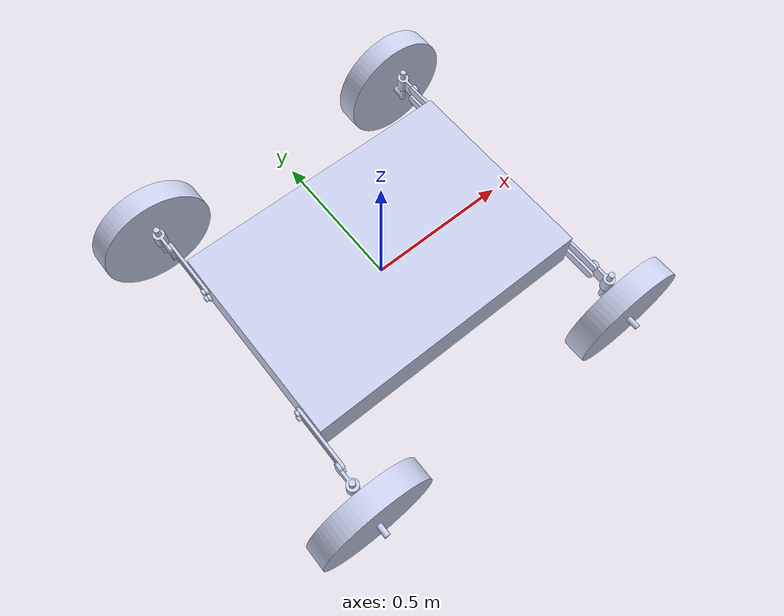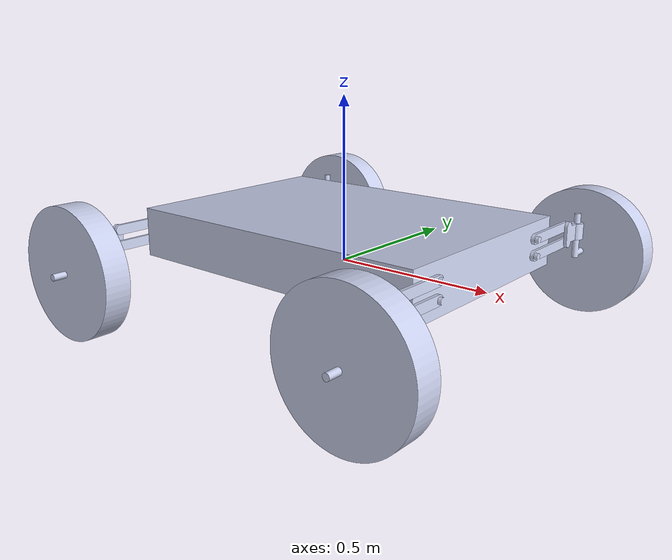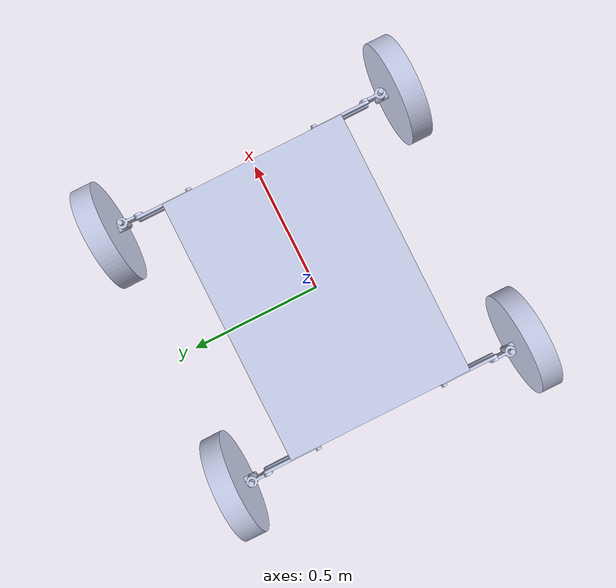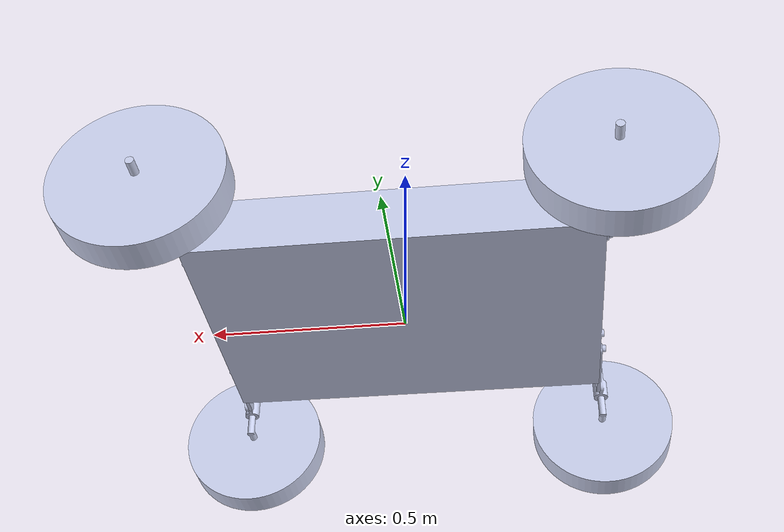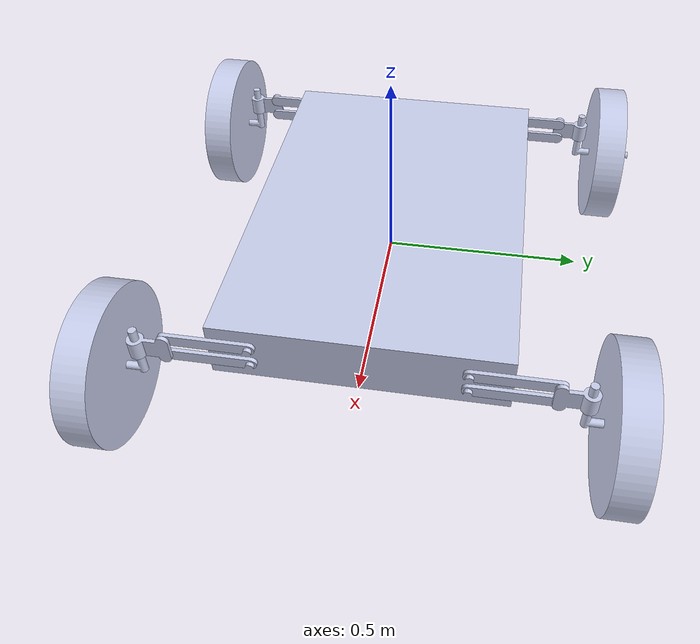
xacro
<robot xmlns:ns0="http://www.ros.org/wiki/xacro" name="VIPER_FULL">

<ns0:include filename="$(find VIPER_FULL_description)/urdf/materials.xacro" />
<ns0:include filename="$(find VIPER_FULL_description)/urdf/VIPER_FULL.trans" />
<ns0:include filename="$(find VIPER_FULL_description)/urdf/VIPER_FULL.gazebo" />
<link name="base_link">
  <inertial>
    <origin xyz="0.0 -4.4327473630754506e-17 0.075" rpy="0 0 0" />
    <mass value="40" />
    <inertia ixx="1.7087250765673858" iyy="3.4116937823395377" izz="4.970465724679575" ixy="0.0" iyz="-0.0" ixz="0.0" />
  </inertial>
  <visual>
    <origin xyz="0 0 0" rpy="0 0 0" />
    <geometry>
      <mesh filename="package://VIPER_FULL_description/meshes/base_link.stl" scale="0.001 0.001 0.001" />
    </geometry>
    <material name="silver">
      <color rgba="0.792156862745098 0.819607843137255 0.933333333333333 1" />
    </material>
  </visual>
  <collision>
    <origin xyz="0 0 0" rpy="0 0 0" />
    <geometry>
      <mesh filename="package://VIPER_FULL_description/meshes/base_link.stl" scale="0.001 0.001 0.001" />
    </geometry>
  </collision>
</link>

<link name="RF_sus_link">
  <inertial>
    <origin xyz="0.0050000000000001155 -0.10491434460128557 -1.1889090892336363e-09" rpy="0 0 0" />
    <mass value="6" />
    <inertia ixx="0.023637633857563584" iyy="0.0005021652109345829" izz="0.023231119162997492" ixy="0.0" iyz="0.0" ixz="0.0" />
  </inertial>
  <visual>
    <origin xyz="-0.5 0.25 -0.05" rpy="0 0 0" />
    <geometry>
      <mesh filename="package://VIPER_FULL_description/meshes/four_bar_1_v1_1.stl" scale="0.001 0.001 0.001" />
    </geometry>
    <material name="silver">
      <color rgba="0.792156862745098 0.819607843137255 0.933333333333333 1" />
    </material>
  </visual>
  <collision>
    <origin xyz="-0.5 0.25 -0.05" rpy="0 0 0" />
    <geometry>
      <mesh filename="package://VIPER_FULL_description/meshes/four_bar_1_v1_1.stl" scale="0.001 0.001 0.001" />
    </geometry>
  </collision>
</link>

<link name="RF_sus_link3">
  <inertial>
    <origin xyz="0.0050000000000001155 -0.041730771756658236 0.024999998873365736" rpy="0 0 0" />
    <mass value="2" />
    <inertia ixx="0.003056831085609723" iyy="0.0009166507818647149" izz="0.002526767807400997" ixy="-0.0" iyz="0.0" ixz="0.0" />
  </inertial>
  <visual>
    <origin xyz="-0.51 0.45 -0.05" rpy="0 0 0" />
    <geometry>
      <mesh filename="package://VIPER_FULL_description/meshes/four_bar_3_v1_1.stl" scale="0.001 0.001 0.001" />
    </geometry>
    <material name="silver">
      <color rgba="0.792156862745098 0.819607843137255 0.933333333333333 1" />
    </material>  </visual>
  <collision>
    <origin xyz="-0.51 0.45 -0.05" rpy="0 0 0" />
    <geometry>
      <mesh filename="package://VIPER_FULL_description/meshes/four_bar_3_v1_1.stl" scale="0.001 0.001 0.001" />
    </geometry>
  </collision>
</link>

<link name="RF_steer_link">
  <inertial>
    <origin xyz="0.0 -0.043780398271573095 -0.07074136486957122" rpy="0 0 0" />
    <mass value="10" />
    <inertia ixx="0.04448390282258499" iyy="0.016956184346695158" izz="0.028028475355693798" ixy="0.0" iyz="-0.000894" ixz="0.0" />
  </inertial>
  <visual>
    <origin xyz="-0.515 0.515 -0.1" rpy="0 0 0" />
    <geometry>
      <mesh filename="package://VIPER_FULL_description/meshes/steer_joint_v12_1.stl" scale="0.001 0.001 0.001" />
    </geometry>
    <material name="silver">
      <color rgba="0.792156862745098 0.819607843137255 0.933333333333333 1" />
    </material>  </visual>
  <collision>
    <origin xyz="-0.515 0.515 -0.1" rpy="0 0 0" />
    <geometry>
      <mesh filename="package://VIPER_FULL_description/meshes/steer_joint_v12_1.stl" scale="0.001 0.001 0.001" />
    </geometry>
  </collision>
</link>

<link name="RF_wheel_link">
  <inertial>
    <origin xyz="2.6645352591003757e-15 3.673628068412427e-11 -2.5633041577126023e-08" rpy="0 0 0" />
    <mass value="5" />
    <inertia ixx="0.05279162213810622" iyy="0.10024977156931693" izz="0.05279162213810622" ixy="-0.0" iyz="-0.0" ixz="-0.0" />
  </inertial>
  <visual>
    <origin xyz="-0.515 0.595 -0.000853" rpy="0 0 0" />
    <geometry>
      <mesh filename="package://VIPER_FULL_description/meshes/wheel_v11__2__1.stl" scale="0.001 0.001 0.001" />
    </geometry>
    <material name="silver">
      <color rgba="0.792156862745098 0.819607843137255 0.933333333333333 1" />
    </material>  </visual>
  <collision>
    <origin xyz="-0.515 0.595 -0.000853" rpy="0 0 0" />
    <geometry>
      <mesh filename="package://VIPER_FULL_description/meshes/wheel_v11__2__1.stl" scale="0.001 0.001 0.001" />
    </geometry>
  </collision>
</link>

<link name="RF_sus_link2">
  <inertial>
    <origin xyz="0.0050000000000001155 -0.10491434460128557 -1.1889090822947423e-09" rpy="0 0 0" />
    <mass value="6" />
    <inertia ixx="0.017925562566186503" iyy="0.00038081620019212597" izz="0.01761728278507859" ixy="0.0" iyz="0.0" ixz="0.0" />
  </inertial>
  <visual>
    <origin xyz="-0.5 0.25 -0.1" rpy="0 0 0" />
    <geometry>
      <mesh filename="package://VIPER_FULL_description/meshes/four_bar_1_v1__1__1.stl" scale="0.001 0.001 0.001" />
    </geometry>
    <material name="silver">
      <color rgba="0.792156862745098 0.819607843137255 0.933333333333333 1" />
    </material>  </visual>
  <collision>
    <origin xyz="-0.5 0.25 -0.1" rpy="0 0 0" />
    <geometry>
      <mesh filename="package://VIPER_FULL_description/meshes/four_bar_1_v1__1__1.stl" scale="0.001 0.001 0.001" />
    </geometry>
  </collision>
</link>

<link name="LF_sus_link">
  <inertial>
    <origin xyz="0.0050000000000001155 0.10491434460128551 1.1889090684169545e-09" rpy="0 0 0" />
    <mass value="6" />
    <inertia ixx="0.023637633857563584" iyy="0.0005021652109345829" izz="0.023231119162997492" ixy="0.0" iyz="0.0" ixz="-0.0" />
  </inertial>
  <visual>
    <origin xyz="-0.5 -0.25 -0.05" rpy="0 0 0" />
    <geometry>
      <mesh filename="package://VIPER_FULL_description/meshes/four_bar_1_v1__5__1.stl" scale="0.001 0.001 0.001" />
    </geometry>
    <material name="silver">
      <color rgba="0.792156862745098 0.819607843137255 0.933333333333333 1" />
    </material>  </visual>
  <collision>
    <origin xyz="-0.5 -0.25 -0.05" rpy="0 0 0" />
    <geometry>
      <mesh filename="package://VIPER_FULL_description/meshes/four_bar_1_v1__5__1.stl" scale="0.001 0.001 0.001" />
    </geometry>
  </collision>
</link>

<link name="LF_sus_link3">
  <inertial>
    <origin xyz="0.0050000000000001155 0.041730771756658236 0.025000001139803288" rpy="0 0 0" />
    <mass value="2" />
    <inertia ixx="0.003056831085609723" iyy="0.0009166507818647149" izz="0.002526767807400997" ixy="0.0" iyz="-0.0" ixz="0.0" />
  </inertial>
  <visual>
    <origin xyz="-0.51 -0.45 -0.05" rpy="0 0 0" />
    <geometry>
      <mesh filename="package://VIPER_FULL_description/meshes/four_bar_3_v1__2__1.stl" scale="0.001 0.001 0.001" />
    </geometry>
    <material name="silver">
      <color rgba="0.792156862745098 0.819607843137255 0.933333333333333 1" />
    </material>
  </visual>
  <collision>
    <origin xyz="-0.51 -0.45 -0.05" rpy="0 0 0" />
    <geometry>
      <mesh filename="package://VIPER_FULL_description/meshes/four_bar_3_v1__2__1.stl" scale="0.001 0.001 0.001" />
    </geometry>
  </collision>
</link>

<link name="LF_steer_link">
  <inertial>
    <origin xyz="3.3306690738754696e-16 0.043780398271572984 -0.07074136260313373" rpy="0 0 0" />
    <mass value="10" />
    <inertia ixx="0.04448390282258499" iyy="0.016956184346695158" izz="0.028028475355693798" ixy="0.0" iyz="0.000894" ixz="0.0" />
  </inertial>
  <visual>
    <origin xyz="-0.515 -0.515 -0.1" rpy="0 0 0" />
    <geometry>
      <mesh filename="package://VIPER_FULL_description/meshes/steer_joint_v12__3__1.stl" scale="0.001 0.001 0.001" />
    </geometry>
    <material name="silver">
      <color rgba="0.792156862745098 0.819607843137255 0.933333333333333 1" />
    </material>  </visual>
  <collision>
    <origin xyz="-0.515 -0.515 -0.1" rpy="0 0 0" />
    <geometry>
      <mesh filename="package://VIPER_FULL_description/meshes/steer_joint_v12__3__1.stl" scale="0.001 0.001 0.001" />
    </geometry>
  </collision>
</link>

<link name="LF_wheel_link">
  <inertial>
    <origin xyz="2.7755575615628914e-15 -3.673650272872919e-11 -2.3366604085992525e-08" rpy="0 0 0" />
    <mass value="5" />
    <inertia ixx="0.05279162213810622" iyy="0.10024977156931693" izz="0.05279162213810622" ixy="0.0" iyz="0.0" ixz="-0.0" />
  </inertial>
  <visual>
    <origin xyz="-0.515 -0.595 -0.000853" rpy="0 0 0" />
    <geometry>
      <mesh filename="package://VIPER_FULL_description/meshes/wheel_v11__3__1.stl" scale="0.001 0.001 0.001" />
    </geometry>
    <material name="silver">
      <color rgba="0.792156862745098 0.819607843137255 0.933333333333333 1" />
    </material>  </visual>
  <collision>
    <origin xyz="-0.515 -0.595 -0.000853" rpy="0 0 0" />
    <geometry>
      <mesh filename="package://VIPER_FULL_description/meshes/wheel_v11__3__1.stl" scale="0.001 0.001 0.001" />
    </geometry>
  </collision>
</link>

<link name="LF_sus_link2">
  <inertial>
    <origin xyz="0.0050000000000000044 0.10491434460128551 -1.1889090822947423e-09" rpy="0 0 0" />
    <mass value="6" />
    <inertia ixx="0.017925562566186503" iyy="0.00038081620019212597" izz="0.01761728278507859" ixy="-0.0" iyz="-0.0" ixz="0.0" />
  </inertial>
  <visual>
    <origin xyz="-0.5 -0.25 -0.1" rpy="0 0 0" />
    <geometry>
      <mesh filename="package://VIPER_FULL_description/meshes/four_bar_1_v1__2__1.stl" scale="0.001 0.001 0.001" />
    </geometry>
    <material name="silver">
      <color rgba="0.792156862745098 0.819607843137255 0.933333333333333 1" />
    </material>  </visual>
  <collision>
    <origin xyz="-0.5 -0.25 -0.1" rpy="0 0 0" />
    <geometry>
      <mesh filename="package://VIPER_FULL_description/meshes/four_bar_1_v1__2__1.stl" scale="0.001 0.001 0.001" />
    </geometry>
  </collision>
</link>

<link name="LH_sus_link">
  <inertial>
    <origin xyz="-0.004999999999999893 0.10491434460128546 -1.1889090892336363e-09" rpy="0 0 0" />
    <mass value="6" />
    <inertia ixx="0.023637633857563584" iyy="0.0005021652109345829" izz="0.023231119162997492" ixy="0.0" iyz="-0.0" ixz="0.0" />
  </inertial>
  <visual>
    <origin xyz="0.5 -0.25 -0.05" rpy="0 0 0" />
    <geometry>
      <mesh filename="package://VIPER_FULL_description/meshes/four_bar_1_v1__4__1.stl" scale="0.001 0.001 0.001" />
    </geometry>
    <material name="silver">
      <color rgba="0.792156862745098 0.819607843137255 0.933333333333333 1" />
    </material>  </visual>
  <collision>
    <origin xyz="0.5 -0.25 -0.05" rpy="0 0 0" />
    <geometry>
      <mesh filename="package://VIPER_FULL_description/meshes/four_bar_1_v1__4__1.stl" scale="0.001 0.001 0.001" />
    </geometry>
  </collision>
</link>

<link name="LH_sus_link3">
  <inertial>
    <origin xyz="-0.004999999999999893 0.041730771756658014 0.024999998873365722" rpy="0 0 0" />
    <mass value="2" />
    <inertia ixx="0.003056831085609723" iyy="0.0009166507818647149" izz="0.002526767807400997" ixy="0.0" iyz="-0.0" ixz="0.0" />
  </inertial>
  <visual>
    <origin xyz="0.51 -0.45 -0.05" rpy="0 0 0" />
    <geometry>
      <mesh filename="package://VIPER_FULL_description/meshes/four_bar_3_v1__3__1.stl" scale="0.001 0.001 0.001" />
    </geometry>
    <material name="silver">
      <color rgba="0.792156862745098 0.819607843137255 0.933333333333333 1" />
    </material>  </visual>
  <collision>
    <origin xyz="0.51 -0.45 -0.05" rpy="0 0 0" />
    <geometry>
      <mesh filename="package://VIPER_FULL_description/meshes/four_bar_3_v1__3__1.stl" scale="0.001 0.001 0.001" />
    </geometry>
  </collision>
</link>

<link name="LH_steer_link">
  <inertial>
    <origin xyz="1.1102230246251565e-16 0.04378039827157276 -0.07074136486957125" rpy="0 0 0" />
    <mass value="10" />
    <inertia ixx="0.04448390282258499" iyy="0.016956184346695158" izz="0.028028475355693798" ixy="-0.0" iyz="0.000894" ixz="0.0" />
  </inertial>
  <visual>
    <origin xyz="0.515 -0.515 -0.1" rpy="0 0 0" />
    <geometry>
      <mesh filename="package://VIPER_FULL_description/meshes/steer_joint_v12__2__1.stl" scale="0.001 0.001 0.001" />
    </geometry>
    <material name="silver">
      <color rgba="0.792156862745098 0.819607843137255 0.933333333333333 1" />
    </material>  </visual>
  <collision>
    <origin xyz="0.515 -0.515 -0.1" rpy="0 0 0" />
    <geometry>
      <mesh filename="package://VIPER_FULL_description/meshes/steer_joint_v12__2__1.stl" scale="0.001 0.001 0.001" />
    </geometry>
  </collision>
</link>

<link name="LH_wheel_link">
  <inertial>
    <origin xyz="2.55351295663786e-15 -3.673672477333412e-11 -2.5633041612471014e-08" rpy="0 0 0" />
    <mass value="5" />
    <inertia ixx="0.05279162213810622" iyy="0.10024977156931693" izz="0.05279162213810622" ixy="0.0" iyz="0.0" ixz="-0.0" />
  </inertial>
  <visual>
    <origin xyz="0.515 -0.595 -0.000853" rpy="0 0 0" />
    <geometry>
      <mesh filename="package://VIPER_FULL_description/meshes/wheel_v11__1__1.stl" scale="0.001 0.001 0.001" />
    </geometry>
    <material name="silver">
      <color rgba="0.792156862745098 0.819607843137255 0.933333333333333 1" />
    </material>  </visual>
  <collision>
    <origin xyz="0.515 -0.595 -0.000853" rpy="0 0 0" />
    <geometry>
      <mesh filename="package://VIPER_FULL_description/meshes/wheel_v11__1__1.stl" scale="0.001 0.001 0.001" />
    </geometry>
  </collision>
</link>

<link name="LH_sus_link2">
  <inertial>
    <origin xyz="-0.0050000000000000044 0.10491434460128546 -1.1889090822947423e-09" rpy="0 0 0" />
    <mass value="6" />
    <inertia ixx="0.017925562566186503" iyy="0.00038081620019212597" izz="0.01761728278507859" ixy="0.0" iyz="-0.0" ixz="-0.0" />
  </inertial>
  <visual>
    <origin xyz="0.5 -0.25 -0.1" rpy="0 0 0" />
    <geometry>
      <mesh filename="package://VIPER_FULL_description/meshes/four_bar_1_v1__3__1.stl" scale="0.001 0.001 0.001" />
    </geometry>
    <material name="silver">
      <color rgba="0.792156862745098 0.819607843137255 0.933333333333333 1" />
    </material>  </visual>
  <collision>
    <origin xyz="0.5 -0.25 -0.1" rpy="0 0 0" />
    <geometry>
      <mesh filename="package://VIPER_FULL_description/meshes/four_bar_1_v1__3__1.stl" scale="0.001 0.001 0.001" />
    </geometry>
  </collision>
</link>

<link name="RH_sus_link">
  <inertial>
    <origin xyz="-0.004999999999999893 -0.10491434460128557 1.1889090961725302e-09" rpy="0 0 0" />
    <mass value="6" />
    <inertia ixx="0.023637633857563584" iyy="0.0005021652109345829" izz="0.023231119162997492" ixy="-0.0" iyz="-0.0" ixz="0.0" />
  </inertial>
  <visual>
    <origin xyz="0.5 0.25 -0.05" rpy="0 0 0" />
    <geometry>
      <mesh filename="package://VIPER_FULL_description/meshes/four_bar_1_v1__6__1.stl" scale="0.001 0.001 0.001" />
    </geometry>
    <material name="silver">
      <color rgba="0.792156862745098 0.819607843137255 0.933333333333333 1" />
    </material>  </visual>
  <collision>
    <origin xyz="0.5 0.25 -0.05" rpy="0 0 0" />
    <geometry>
      <mesh filename="package://VIPER_FULL_description/meshes/four_bar_1_v1__6__1.stl" scale="0.001 0.001 0.001" />
    </geometry>
  </collision>
</link>

<link name="RH_sus_link3">
  <inertial>
    <origin xyz="-0.004999999999999893 -0.041730771756658236 0.025000001139803357" rpy="0 0 0" />
    <mass value="2" />
    <inertia ixx="0.003056831085609723" iyy="0.0009166507818647149" izz="0.002526767807400997" ixy="0.0" iyz="0.0" ixz="0.0" />
  </inertial>
  <visual>
    <origin xyz="0.51 0.45 -0.05" rpy="0 0 0" />
    <geometry>
      <mesh filename="package://VIPER_FULL_description/meshes/four_bar_3_v1__1__1.stl" scale="0.001 0.001 0.001" />
    </geometry>
    <material name="silver">
      <color rgba="0.792156862745098 0.819607843137255 0.933333333333333 1" />
    </material>  </visual>
  <collision>
    <origin xyz="0.51 0.45 -0.05" rpy="0 0 0" />
    <geometry>
      <mesh filename="package://VIPER_FULL_description/meshes/four_bar_3_v1__1__1.stl" scale="0.001 0.001 0.001" />
    </geometry>
  </collision>
</link>

<link name="RH_steer_link">
  <inertial>
    <origin xyz="1.1102230246251565e-16 -0.043780398271572984 -0.07074136260313361" rpy="0 0 0" />
    <mass value="10" />
    <inertia ixx="0.04448390282258499" iyy="0.016956184346695158" izz="0.028028475355693798" ixy="0.0" iyz="-0.000894" ixz="0.0" />
  </inertial>
  <visual>
    <origin xyz="0.515 0.515 -0.1" rpy="0 0 0" />
    <geometry>
      <mesh filename="package://VIPER_FULL_description/meshes/steer_joint_v12__1__1.stl" scale="0.001 0.001 0.001" />
    </geometry>
    <material name="silver">
      <color rgba="0.792156862745098 0.819607843137255 0.933333333333333 1" />
    </material>  </visual>
  <collision>
    <origin xyz="0.515 0.515 -0.1" rpy="0 0 0" />
    <geometry>
      <mesh filename="package://VIPER_FULL_description/meshes/steer_joint_v12__1__1.stl" scale="0.001 0.001 0.001" />
    </geometry>
  </collision>
</link>

<link name="RH_wheel_link">
  <inertial>
    <origin xyz="2.6645352591003757e-15 3.673650272872919e-11 -2.336660396380294e-08" rpy="0 0 0" />
    <mass value="5" />
    <inertia ixx="0.05279162213810622" iyy="0.10024977156931693" izz="0.05279162213810622" ixy="-0.0" iyz="-0.0" ixz="-0.0" />
  </inertial>
  <visual>
    <origin xyz="0.515 0.595 -0.000853" rpy="0 0 0" />
    <geometry>
      <mesh filename="package://VIPER_FULL_description/meshes/wheel_v11_1.stl" scale="0.001 0.001 0.001" />
    </geometry>
    <material name="silver">
      <color rgba="0.792156862745098 0.819607843137255 0.933333333333333 1" />
    </material>  </visual>
  <collision>
    <origin xyz="0.515 0.595 -0.000853" rpy="0 0 0" />
    <geometry>
      <mesh filename="package://VIPER_FULL_description/meshes/wheel_v11_1.stl" scale="0.001 0.001 0.001" />
    </geometry>
  </collision>
</link>

<link name="RH_sus_link2">
  <inertial>
    <origin xyz="-0.004999999999999893 -0.10491434460128557 1.1889090961725302e-09" rpy="0 0 0" />
    <mass value="6" />
    <inertia ixx="0.017925562566186503" iyy="0.00038081620019212597" izz="0.01761728278507859" ixy="-0.0" iyz="-0.0" ixz="-0.0" />
  </inertial>
  <visual>
    <origin xyz="0.5 0.25 -0.1" rpy="0 0 0" />
    <geometry>
      <mesh filename="package://VIPER_FULL_description/meshes/four_bar_1_v1__7__1.stl" scale="0.001 0.001 0.001" />
    </geometry>
    <material name="silver">
      <color rgba="0.792156862745098 0.819607843137255 0.933333333333333 1" />
    </material>  </visual>
  <collision>
    <origin xyz="0.5 0.25 -0.1" rpy="0 0 0" />
    <geometry>
      <mesh filename="package://VIPER_FULL_description/meshes/four_bar_1_v1__7__1.stl" scale="0.001 0.001 0.001" />
    </geometry>
  </collision>
</link>

<link name="dummy_link1">
</link>

<link name="dummy_link2">
</link>

<link name="dummy_link3">
</link>

<link name="dummy_link4">
</link>

<joint name="RF_sus_joint" type="revolute">
  <origin xyz="0.5 -0.25 0.05" rpy="0 0 0" />
  <parent link="base_link" />
  <child link="RF_sus_link" />
  <axis xyz="1.0 0.0 0.0" />
  <limit upper="0.5235987755982988" lower="-0.5235987755982988" />
  <limit effort="1" velocity="1" />
   <dynamics damping="0.1" friction="0.5" />
</joint>

<joint name="RF_sus_joint_fixed" type="continuous">
  <origin xyz="0.01 -0.2 0.0" rpy="0 0 0" />
  <parent link="RF_sus_link" />
  <child link="RF_sus_link3" />
  <axis xyz="1.0 0.0 0.0" />
</joint>

<joint name="RF_steer_joint" type="revolute">
  <origin xyz="0.005 -0.065 0.05" rpy="0 0 0" />
  <parent link="RF_sus_link3" />
  <child link="RF_steer_link" />
  <axis xyz="-0.0 -0.0 -1.0" />
    <limit lower="-0.2" upper="0.2" effort="10" velocity="10" />
    <dynamics damping="1" friction="5" />
</joint>

<joint name="RF_wheel_joint" type="revolute">
  <origin xyz="0.0 -0.08 -0.099147" rpy="0 0 0" />
  <parent link="RF_steer_link" />
  <child link="RF_wheel_link" />
  <axis xyz="0.0 -1.0 0.0" />
  <limit effort="100" velocity="100" />
   <dynamics damping="0.5" friction="1" />
</joint>

<joint name="RF_sus_joint_2" type="revolute">
  <origin xyz="0.5 -0.25 0.1" rpy="0 0 0" />
  <parent link="base_link" />
  <child link="RF_sus_link2" />
  <axis xyz="-1.0 0.0 0.0" />
  <limit upper="0.5235987755982988" lower="-0.5235987755982988" />
  <limit effort="1" velocity="1" />
   <dynamics damping="0.1" friction="0.5" />
</joint>

<joint name="LF_sus_joint" type="revolute">
  <origin xyz="0.5 0.25 0.05" rpy="0 0 0" />
  <parent link="base_link" />
  <child link="LF_sus_link" />
  <axis xyz="1.0 -0.0 0.0" />
  <limit upper="0.5235987755982988" lower="-0.5235987755982988" />
  <limit effort="5" velocity="1" />
   <dynamics damping="0.5" friction="1" />
</joint>

<joint name="LF_sus_joint_fixed" type="continuous">
  <origin xyz="0.01 0.2 0.0" rpy="0 0 0" />
  <parent link="LF_sus_link" />
  <child link="LF_sus_link3" />
  <axis xyz="1.0 -0.0 0.0" />
</joint>

<joint name="LF_steer_joint" type="revolute">
  <origin xyz="0.005 0.065 0.05" rpy="0 0 0" />
  <parent link="LF_sus_link3" />
  <child link="LF_steer_link" />
  <axis xyz="0.0 0.0 -1.0" />
    <limit lower="-0.2" upper="0.2" effort="10" velocity="10" />
    <dynamics damping="1" friction="5" />
</joint>

<joint name="LF_wheel_joint" type="revolute">
  <origin xyz="0.0 0.08 -0.099147" rpy="0 0 0" />
  <parent link="LF_steer_link" />
  <child link="LF_wheel_link" />
  <axis xyz="0.0 1.0 0.0" />
  <limit effort="100" velocity="100" />
   <dynamics damping="0.5" friction="1" />
</joint>

<joint name="LF_sus_joint_2" type="revolute">
  <origin xyz="0.5 0.25 0.1" rpy="0 0 0" />
  <parent link="base_link" />
  <child link="LF_sus_link2" />
  <axis xyz="1.0 -0.0 0.0" />
  <limit upper="0.5235987755982988" lower="-0.5235987755982988" />
  <limit effort="1" velocity="1" />
   <dynamics damping="0.1" friction="0.5" />
</joint>

<joint name="LH_sus_joint" type="revolute">
  <origin xyz="-0.5 0.25 0.05" rpy="0 0 0" />
  <parent link="base_link" />
  <child link="LH_sus_link" />
  <axis xyz="1.0 0.0 0.0" />
  <limit upper="0.5235987755982988" lower="-0.5235987755982988" />
  <limit effort="5" velocity="1" />
   <dynamics damping="0.5" friction="1" />
</joint>

<joint name="LH_sus_joint_fixed" type="continuous">
  <origin xyz="-0.01 0.2 0.0" rpy="0 0 0" />
  <parent link="LH_sus_link" />
  <child link="LH_sus_link3" />
  <axis xyz="-1.0 0.0 0.0" />
</joint>

<joint name="LH_steer_joint" type="revolute">
  <origin xyz="-0.005 0.065 0.05" rpy="0 0 0" />
  <parent link="LH_sus_link3" />
  <child link="LH_steer_link" />
  <axis xyz="0.0 0.0 -1.0" />
    <limit lower="-0.2" upper="0.2" effort="10" velocity="10" />
    <dynamics damping="1" friction="5" />
</joint>

<joint name="LH_wheel_joint" type="revolute">
  <origin xyz="0.0 0.08 -0.099147" rpy="0 0 0" />
  <parent link="LH_steer_link" />
  <child link="LH_wheel_link" />
  <axis xyz="-0.0 1.0 0.0" />
  <limit effort="100" velocity="100" />
   <dynamics damping="0.5" friction="1" />
</joint>

<joint name="LH_sus_joint_2" type="continuous">
  <origin xyz="-0.5 0.25 0.1" rpy="0 0 0" />
  <parent link="base_link" />
  <child link="LH_sus_link2" />
  <axis xyz="1.0 0.0 0.0" />
  <limit upper="0.5235987755982988" lower="-0.5235987755982988" />
  <limit effort="1" velocity="1" />
   <dynamics damping="0.1" friction="0.5" />
</joint>

<joint name="RH_sus_joint" type="revolute">
  <origin xyz="-0.5 -0.25 0.05" rpy="0 0 0" />
  <parent link="base_link" />
  <child link="RH_sus_link" />
  <axis xyz="1.0 0.0 0.0" />
  <limit upper="0.5235987755982988" lower="-0.5235987755982988" />
  <limit effort="5" velocity="1" />
   <dynamics damping="0.5" friction="1" />
</joint>

<joint name="RH_sus_joint_fixed" type="continuous">
  <origin xyz="-0.01 -0.2 0.0" rpy="0 0 0" />
  <parent link="RH_sus_link" />
  <child link="RH_sus_link3" />
  <axis xyz="-1.0 0.0 0.0" />
</joint>

<joint name="RH_steer_joint" type="revolute">
  <origin xyz="-0.005 -0.065 0.05" rpy="0 0 0" />
  <parent link="RH_sus_link3" />
  <child link="RH_steer_link" />
  <axis xyz="-0.0 -0.0 -1.0" />
  <limit upper="0.5236" lower="-0.5236" />
    <limit lower="-0.2" upper="0.2" effort="10" velocity="10" />
    <dynamics damping="1" friction="5" />
</joint>

<joint name="RH_wheel_joint" type="revolute">
  <origin xyz="0.0 -0.08 -0.099147" rpy="0 0 0" />
  <parent link="RH_steer_link" />
  <child link="RH_wheel_link" />
  <axis xyz="0.0 -1.0 0.0" />
  <limit effort="100" velocity="100" />
   <dynamics damping="0.5" friction="1" />
</joint>

<joint name="RH_sus_joint_2" type="continuous">
  <origin xyz="-0.5 -0.25 0.1" rpy="0 0 0" />
  <parent link="base_link" />
  <child link="RH_sus_link2" />
  <axis xyz="1.0 0.0 0.0" />
  <limit upper="0.5235987755982988" lower="-0.5235987755982988" />
  <limit effort="1" velocity="1" />
   <dynamics damping="0.1" friction="0.5" />
</joint>

<joint name="dummy_joint1" type="fixed">
  <origin xyz="0 -0.2 0" rpy="0 0 0" />
  <parent link="RF_sus_link2" />
  <child link="dummy_link1" />
</joint>

<joint name="dummy_joint2" type="fixed">
  <origin xyz="0 0.2 0" rpy="0 0 0" />
  <parent link="LF_sus_link2" />
  <child link="dummy_link2" />
</joint>

<joint name="dummy_joint3" type="fixed">
  <origin xyz="0 0.2 0" rpy="0 0 0" />
  <parent link="LH_sus_link2" />
  <child link="dummy_link3" />
</joint>

<joint name="dummy_joint4" type="fixed">
  <origin xyz="0 -0.2 0" rpy="0 0 0" />
  <parent link="RH_sus_link2" />
  <child link="dummy_link4" />
</joint>

</robot>

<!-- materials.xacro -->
<robot name="VIPER_FULL" xmlns:xacro="http://www.ros.org/wiki/xacro" >

<material name="silver">
  <color rgba="0.700 0.700 0.700 1.000"/>
</material>

</robot>

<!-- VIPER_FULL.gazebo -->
<robot name="VIPER_FULL" xmlns:xacro="http://www.ros.org/wiki/xacro" >

<xacro:property name="body_color" value="Gazebo/Silver" />

<gazebo>
  <plugin name="control" filename="libgazebo_ros_control.so"/>
</gazebo>
<gazebo reference="base_link">
  <material>${body_color}</material>
  <mu1>0.2</mu1>
  <mu2>0.2</mu2>
  <selfCollide>true</selfCollide>
  <gravity>true</gravity>
</gazebo>

<gazebo reference="four_bar_1_v1_1">
  <material>${body_color}</material>
  <mu1>0.2</mu1>
  <mu2>0.2</mu2>
  <selfCollide>true</selfCollide>
</gazebo>

<gazebo reference="four_bar_3_v1_1">
  <material>${body_color}</material>
  <mu1>0.2</mu1>
  <mu2>0.2</mu2>
  <selfCollide>true</selfCollide>
</gazebo>

<gazebo reference="steer_joint_v12_1">
  <material>${body_color}</material>
  <mu1>0.2</mu1>
  <mu2>0.2</mu2>
  <selfCollide>true</selfCollide>
</gazebo>

<gazebo reference="wheel_v11__2__1">
  <material>${body_color}</material>
  <mu1>0.2</mu1>
  <mu2>0.2</mu2>
  <selfCollide>true</selfCollide>
</gazebo>

<gazebo reference="four_bar_1_v1__1__1">
  <material>${body_color}</material>
  <mu1>0.2</mu1>
  <mu2>0.2</mu2>
  <selfCollide>true</selfCollide>
</gazebo>

<gazebo reference="four_bar_1_v1__5__1">
  <material>${body_color}</material>
  <mu1>0.2</mu1>
  <mu2>0.2</mu2>
  <selfCollide>true</selfCollide>
</gazebo>

<gazebo reference="four_bar_3_v1__2__1">
  <material>${body_color}</material>
  <mu1>0.2</mu1>
  <mu2>0.2</mu2>
  <selfCollide>true</selfCollide>
</gazebo>

<gazebo reference="steer_joint_v12__3__1">
  <material>${body_color}</material>
  <mu1>0.2</mu1>
  <mu2>0.2</mu2>
  <selfCollide>true</selfCollide>
</gazebo>

<gazebo reference="wheel_v11__3__1">
  <material>${body_color}</material>
  <mu1>0.2</mu1>
  <mu2>0.2</mu2>
  <selfCollide>true</selfCollide>
</gazebo>

<gazebo reference="four_bar_1_v1__2__1">
  <material>${body_color}</material>
  <mu1>0.2</mu1>
  <mu2>0.2</mu2>
  <selfCollide>true</selfCollide>
</gazebo>

<gazebo reference="four_bar_1_v1__4__1">
  <material>${body_color}</material>
  <mu1>0.2</mu1>
  <mu2>0.2</mu2>
  <selfCollide>true</selfCollide>
</gazebo>

<gazebo reference="four_bar_3_v1__3__1">
  <material>${body_color}</material>
  <mu1>0.2</mu1>
  <mu2>0.2</mu2>
  <selfCollide>true</selfCollide>
</gazebo>

<gazebo reference="steer_joint_v12__2__1">
  <material>${body_color}</material>
  <mu1>0.2</mu1>
  <mu2>0.2</mu2>
  <selfCollide>true</selfCollide>
</gazebo>

<gazebo reference="wheel_v11__1__1">
  <material>${body_color}</material>
  <mu1>0.2</mu1>
  <mu2>0.2</mu2>
  <selfCollide>true</selfCollide>
</gazebo>

<gazebo reference="four_bar_1_v1__3__1">
  <material>${body_color}</material>
  <mu1>0.2</mu1>
  <mu2>0.2</mu2>
  <selfCollide>true</selfCollide>
</gazebo>

<gazebo reference="four_bar_1_v1__6__1">
  <material>${body_color}</material>
  <mu1>0.2</mu1>
  <mu2>0.2</mu2>
  <selfCollide>true</selfCollide>
</gazebo>

<gazebo reference="four_bar_3_v1__1__1">
  <material>${body_color}</material>
  <mu1>0.2</mu1>
  <mu2>0.2</mu2>
  <selfCollide>true</selfCollide>
</gazebo>

<gazebo reference="steer_joint_v12__1__1">
  <material>${body_color}</material>
  <mu1>0.2</mu1>
  <mu2>0.2</mu2>
  <selfCollide>true</selfCollide>
</gazebo>

<gazebo reference="wheel_v11_1">
  <material>${body_color}</material>
  <mu1>0.2</mu1>
  <mu2>0.2</mu2>
  <selfCollide>true</selfCollide>
</gazebo>

<gazebo reference="four_bar_1_v1__7__1">
  <material>${body_color}</material>
  <mu1>0.2</mu1>
  <mu2>0.2</mu2>
  <selfCollide>true</selfCollide>
</gazebo>

</robot>
